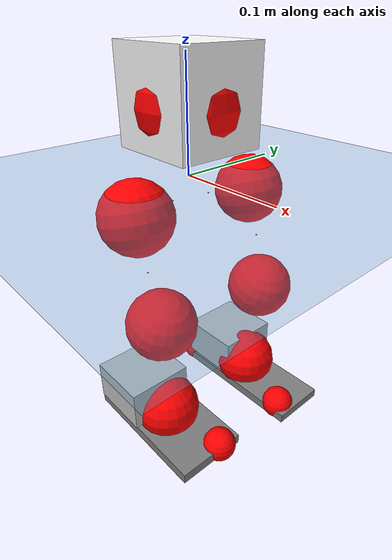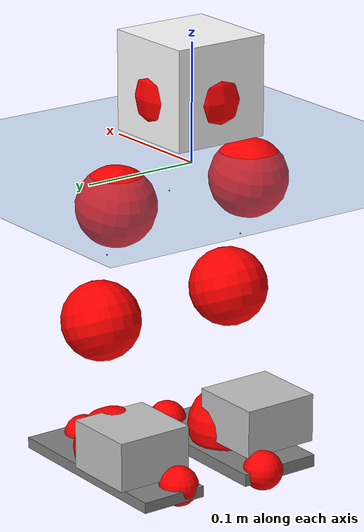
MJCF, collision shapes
<mujoco model="pi_12dof_release_v1">
  <compiler angle="radian" assetdir="assets" balanceinertia="true" inertiafromgeom="false"/>

  <option timestep="0.005" density="1.2" viscosity="2e-05"/>

  <size nkey="1"/>

  <visual>
    <quality shadowsize="8192"/>
    <map shadowclip="0.5"/>
  </visual>

  <default>
    <default class="/">
      <joint armature="0.01" damping="0.01" frictionloss="0.01"/>
      <geom contype="0" conaffinity="0" group="1" solref="-1000 -80"/>
      <site size="0.01 0.005 0.005" group="5"/>
      <general forcelimited="true" biastype="affine" gainprm="20" biasprm="0 -20 -0.5"/>
      <default class="foot">
        <geom size="0.0845 0.036 0.005" type="box" condim="6" group="4" priority="1" friction="0.9 0.2 0.2" solimp="0.015 1 0.005"/>
      </default>
      <default class="reward_collision_sphere">
        <geom group="5" rgba="1 0 0 1"/>
      </default>
    </default>
  </default>

  <asset>
    <texture type="skybox" colorspace="auto" name="//unnamed_texture_0" builtin="gradient" rgb1="0.95 0.95 0.95" rgb2="0.95 0.95 0.95" width="100" height="600"/>
    <texture type="2d" colorspace="auto" name="texplane" builtin="checker" rgb1="0.345 0.575 0.748" rgb2="0.345 0.575 0.748" markrgb="1 1 1" width="512" height="512"/>
    <material name="MatPlane" class="/" texture="texplane" texuniform="true" texrepeat="2 2" specular="0.9"/>
    <mesh name="baselink_1" class="/" file="baselink_1.STL"/>
    <mesh name="r_hip_pitch_link" class="/" file="r_hip_pitch_link.STL"/>
    <mesh name="r_hip_roll_link" class="/" file="r_hip_roll_link.STL"/>
    <mesh name="r_thigh_link" class="/" file="r_thigh_link.STL"/>
    <mesh name="r_calf_link" class="/" file="r_calf_link.STL"/>
    <mesh name="r_ankle_pitch_link" class="/" file="r_ankle_pitch_link.STL"/>
    <mesh name="r_ankle_roll_link" class="/" file="r_ankle_roll_link.STL"/>
    <mesh name="l_hip_pitch_link" class="/" file="l_hip_pitch_link.STL"/>
    <mesh name="l_hip_roll_link" class="/" file="l_hip_roll_link.STL"/>
    <mesh name="l_thigh_link" class="/" file="l_thigh_link.STL"/>
    <mesh name="l_calf_link" class="/" file="l_calf_link.STL"/>
    <mesh name="l_ankle_pitch_link" class="/" file="l_ankle_pitch_link.STL"/>
    <mesh name="l_ankle_roll_link" class="/" file="l_ankle_roll_link.STL"/>
  </asset>

  <worldbody>
    <geom name="floor" class="/" size="100 100 0.125" type="plane" group="0" material="MatPlane"/>
    <light name="toplight_shadow" class="/" pos="0 0 5" dir="0.0990148 0.0990148 -0.990148" type="directional" ambient="0.04 0.04 0.04" diffuse="0.55 0.55 0.55" specular="0.12 0.12 0.12"/>
    <light name="toplight_fill" class="/" pos="0 0 5" dir="0.0990148 0.0990148 -0.990148" type="directional" castshadow="false" ambient="0.04 0.04 0.04" diffuse="0.3 0.3 0.3" specular="0.08 0.08 0.08"/>
    <body name="trunk" pos="0.00226285 -0.000153597 0.00712633" quat="0.999995 -0.00146834 0.000435752 -0.00266591">
      <inertial pos="0.00646614 -0.00483989 0.0314764" quat="0.703613 0.0290088 0.0270941 0.709474" mass="1.14838" diaginertia="0.00815953 0.0019171 0.000842156"/>
      <joint name="//unnamed_joint_0" type="free"/>
      <geom name="//unnamed_geom_1" class="/" type="mesh" density="0" rgba="1 1 1 1" mesh="baselink_1"/>
      <geom name="//unnamed_geom_2" class="/" size="0.0413575 0.0413575 0.0413575" pos="0 0 0.059091" type="box" rgba="1 1 1 1"/>
      <geom name="//unnamed_geom_3" class="reward_collision_sphere" size="0.0454932" pos="0 0 0.0517046"/>
      <site name="imu" class="/" pos="0.010401 -0.0080108 0.0193621" size="0.0082715"/>
      <camera name="track" class="/" pos="0 -1.50563 0" quat="0.707107 0.707107 0 0" mode="trackcom"/>
      <camera name="ego_camera" class="/" pos="0.0742499 0 0.132955" quat="-0.5 -0.5 0.5 0.5"/>
      <body name="r_hip_pitch_link" pos="-0.00554512 -0.0160838 -0.0273886" quat="0.992195 0.000161928 -0.124698 1.24996e-05">
        <inertial pos="0.00660099 -0.0451171 0.00664194" quat="0.0022643 0.724904 -0.0256724 0.688368" mass="0.214853" diaginertia="0.000100761 2.37323e-05 1.854e-05"/>
        <joint name="r_hip_pitch_joint" class="/" pos="0 0 0" axis="0.00159079 -0.999999 -0.000350323" stiffness="0.00580485" range="-1.69783 1.2152" armature="0.00806571" damping="0.0287361" frictionloss="0.00918287"/>
        <geom name="//unnamed_geom_4" class="/" type="mesh" density="0" rgba="0.75294 0.75294 0.75294 1" mesh="r_hip_pitch_link"/>
        <geom name="//unnamed_geom_5" class="/" size="0.000413575 0.000413575 0.000413575" type="box" rgba="0.75294 0.75294 0.75294 1"/>
        <body name="r_hip_roll_link" pos="0.00433278 -0.0423927 -0.00408185" quat="1 0.000551335 -0.000593268 -0.000163535">
          <inertial pos="0.00357303 -0.000731693 -0.0506576" quat="0.704691 -0.0814227 -0.078003 0.700498" mass="0.239183" diaginertia="0.000346503 7.15562e-05 3.16233e-05"/>
          <joint name="r_hip_roll_joint" class="/" pos="0 0 0" axis="-0.999867 -0.013202 -0.00956393" stiffness="0.00358452" range="-0.132896 0.48728" armature="0.0115051" damping="0.00958463" frictionloss="0.00750313"/>
          <geom name="//unnamed_geom_6" class="/" type="mesh" density="0" rgba="0.75294 0.75294 0.75294 1" mesh="r_hip_roll_link"/>
          <geom name="//unnamed_geom_7" class="/" size="0.000413575 0.000413575 0.000413575" type="box" rgba="0.75294 0.75294 0.75294 1"/>
          <geom name="//unnamed_geom_8" class="reward_collision_sphere" size="0.033086"/>
          <body name="r_thigh_link" pos="-0.00511473 0.00233004 -0.0501069" quat="1 -0.000400778 -0.000144002 -0.000260664">
            <inertial pos="0.00855551 0.0074281 -0.0372047" quat="0.732825 0.680397 0.00239201 -0.00465776" mass="0.0627917" diaginertia="0.00012531 2.3094e-05 1.25172e-05"/>
            <joint name="r_thigh_joint" class="/" pos="0 0 0" axis="-0.00163342 -0.00468671 -0.999988" range="-0.287861 0.496905" armature="0.011063" damping="0" frictionloss="0.00736945"/>
            <geom name="//unnamed_geom_9" class="/" type="mesh" density="0" rgba="0.75294 0.75294 0.75294 1" mesh="r_thigh_link"/>
            <geom name="//unnamed_geom_10" class="/" size="0.000413575 0.000413575 0.000413575" type="box" rgba="0.75294 0.75294 0.75294 1"/>
            <body name="r_calf_link" pos="0.00103687 0.00182192 -0.0510232" quat="0.948565 -0.00237528 0.316574 -0.000487449">
              <inertial pos="-0.00101418 -0.000617209 -0.0520902" quat="0.999326 -0.0305835 0.0109886 -0.0170467" mass="0.412199" diaginertia="0.00338878 0.000823867 3.88895e-05"/>
              <joint name="r_calf_joint" class="/" pos="0 0 0" axis="0.00172962 -0.999937 -0.0110952" range="-1.65245 0.627385" armature="0.00833733" damping="0.0122011" frictionloss="0.00915512"/>
              <geom name="//unnamed_geom_11" class="/" type="mesh" density="0" rgba="0.75294 0.75294 0.75294 1" mesh="r_calf_link"/>
              <geom name="//unnamed_geom_12" class="/" size="0.000413575 0.000413575 0.000413575" type="box" rgba="0.75294 0.75294 0.75294 1"/>
              <geom name="//unnamed_geom_13" class="reward_collision_sphere" size="0.033086"/>
              <body name="r_ankle_pitch_link" pos="-0.00107327 0.0024032 -0.108871" quat="0.980067 -2.11827e-06 -0.198669 9.48986e-07">
                <inertial pos="0.00496402 0.00234255 -0.00125683" quat="0.000578057 0.708423 0.00438649 0.705775" mass="0.0957416" diaginertia="0.000300555 5.6953e-05 2.65266e-05"/>
                <joint name="r_ankle_pitch_joint" class="/" pos="0 0 0" axis="0.00976595 -0.999939 -0.00510246" stiffness="0.00551408" range="-1.27459 0.500863" armature="0.00806106" damping="0" frictionloss="0.0091879"/>
                <geom name="//unnamed_geom_14" class="/" type="mesh" density="0" rgba="0.75294 0.75294 0.75294 1" mesh="r_ankle_pitch_link"/>
                <geom name="//unnamed_geom_15" class="/" size="0.0322588 0.033086 0.0206787" type="box" rgba="0.75294 0.75294 0.75294 1"/>
                <body name="r_ankle_roll_link" pos="0.0812026 0.00720125 -0.00155461" quat="0.999999 -0.000336839 -0.000732403 -0.000607923">
                  <inertial pos="-0.0260432 0.00601009 -0.0150164" quat="0.555656 0.398836 0.443369 0.57931" mass="0.306603" diaginertia="0.00112866 0.000250414 6.86991e-05"/>
                  <joint name="r_ankle_roll_joint" class="/" pos="0 0 0" axis="-0.999933 0.0100461 0.00572774" range="0.00930209 0.119734" armature="0.0104026" damping="0" frictionloss="0.0108634"/>
                  <geom name="//unnamed_geom_16" class="/" type="mesh" density="0" rgba="0.75294 0.75294 0.75294 1" mesh="r_ankle_roll_link"/>
                  <geom name="//unnamed_geom_17" class="/" type="mesh" rgba="0.75294 0.75294 0.75294 1" mesh="r_ankle_roll_link"/>
                  <geom name="right_foot" class="foot" size="0.0719942 0.0356126 0.00518403" pos="-0.05049 0 -0.0325"/>
                  <geom name="//unnamed_geom_19" class="reward_collision_sphere" size="0.033086" pos="-0.0495 0 -0.0147727"/>
                  <geom name="//unnamed_geom_20" class="reward_collision_sphere" size="0.016543" pos="0.01485 0.0150563 -0.0295455"/>
                  <geom name="//unnamed_geom_21" class="reward_collision_sphere" size="0.016543" pos="-0.1188 0.0150563 -0.0295455"/>
                  <site name="right_foot" class="foot" pos="-0.05049 0 -0.0325" size="0.0082715"/>
                </body>
              </body>
            </body>
          </body>
        </body>
      </body>
      <body name="l_hip_pitch_link" pos="0.000998575 0.0203205 -0.0271989" quat="0.992223 -0.000355692 -0.124475 -0.00019715">
        <inertial pos="-0.000415861 0.0465504 0.00697776" quat="-0.0381289 0.706516 0.0306534 0.706004" mass="0.218502" diaginertia="0.000125309 2.5994e-05 2.36284e-05"/>
        <joint name="l_hip_pitch_joint" class="/" pos="0 0 0" axis="-0.0242757 0.999691 -0.00532403" stiffness="0.0131132" range="-1.10767 1.77216" armature="0.00837634" damping="0.0210331" frictionloss="0.00784522"/>
        <geom name="//unnamed_geom_22" class="/" type="mesh" density="0" rgba="0.75294 0.75294 0.75294 1" mesh="l_hip_pitch_link"/>
        <geom name="//unnamed_geom_23" class="/" size="0.000413575 0.000413575 0.000413575" type="box" rgba="0.75294 0.75294 0.75294 1"/>
        <body name="l_hip_roll_link" pos="0.00436598 0.0475538 -0.00658713" quat="0.999998 -0.000871059 -0.00149727 1.27661e-05">
          <inertial pos="-0.0095907 0.00340722 -0.0373643" quat="0.69906 -0.0751582 -0.0778283 0.70683" mass="0.192777" diaginertia="0.000261945 6.18221e-05 2.44401e-05"/>
          <joint name="l_hip_roll_joint" class="/" pos="0 0 0" axis="-0.999942 -0.00878918 0.00621144" range="-0.4991 0.145587" armature="0.00942836" damping="0" frictionloss="0.00831062"/>
          <geom name="//unnamed_geom_24" class="/" type="mesh" density="0" rgba="0.75294 0.75294 0.75294 1" mesh="l_hip_roll_link"/>
          <geom name="//unnamed_geom_25" class="/" size="0.000413575 0.000413575 0.000413575" type="box" rgba="0.75294 0.75294 0.75294 1"/>
          <geom name="//unnamed_geom_26" class="reward_collision_sphere" size="0.033086"/>
          <body name="l_thigh_link" pos="0.00287569 -0.000582376 -0.0470672" quat="0.999998 0.00142398 0.000493257 -0.00127464">
            <inertial pos="0.00696383 -0.00373769 -0.0279347" quat="0.669873 0.74196 0.00541139 -0.0271339" mass="0.0676377" diaginertia="0.00012223 2.40188e-05 1.32174e-05"/>
            <joint name="l_thigh_joint" class="/" pos="0 0 0" axis="0.00432485 0.00535703 -0.999976" range="-0.635939 0.239284" armature="0.00781072" damping="0" frictionloss="0.00516349"/>
            <geom name="//unnamed_geom_27" class="/" type="mesh" density="0" rgba="0.75294 0.75294 0.75294 1" mesh="l_thigh_link"/>
            <geom name="//unnamed_geom_28" class="/" size="0.000413575 0.000413575 0.000413575" type="box" rgba="0.75294 0.75294 0.75294 1"/>
            <body name="l_calf_link" pos="-0.00824265 0.00212341 -0.0571559" quat="0.947615 -0.000339361 0.319414 0.000225834">
              <inertial pos="0.00447386 0.00439319 -0.0552318" quat="0.999674 -0.0187456 0.0159927 -0.00674896" mass="0.46306" diaginertia="0.0028045 0.000780397 3.44908e-05"/>
              <joint name="l_calf_joint" class="/" pos="0 0 0" axis="-0.00400409 0.999991 0.00131797" stiffness="0.0203307" range="-0.547614 1.53197" armature="0.00888194" damping="0.0152116" frictionloss="0.00732662"/>
              <geom name="//unnamed_geom_29" class="/" type="mesh" density="0" rgba="0.75294 0.75294 0.75294 1" mesh="l_calf_link"/>
              <geom name="//unnamed_geom_30" class="/" size="0.000413575 0.000413575 0.000413575" type="box" rgba="0.75294 0.75294 0.75294 1"/>
              <geom name="//unnamed_geom_31" class="reward_collision_sphere" size="0.033086"/>
              <body name="l_ankle_pitch_link" pos="-0.00392853 0.00151405 -0.104633" quat="0.980173 -0.000248321 -0.19814 0.00128786">
                <inertial pos="0.00486416 0.00030716 0.00538388" quat="-0.00539789 0.699779 0.00814029 0.714293" mass="0.107562" diaginertia="0.000270477 5.26306e-05 2.65449e-05"/>
                <joint name="l_ankle_pitch_joint" class="/" pos="0 0 0" axis="-0.00117802 0.999999 -0.000868592" range="-0.459667 1.35308" armature="0.00833822" damping="0.0446689" frictionloss="0.00992391"/>
                <geom name="//unnamed_geom_32" class="/" type="mesh" density="0" rgba="0.75294 0.75294 0.75294 1" mesh="l_ankle_pitch_link"/>
                <geom name="//unnamed_geom_33" class="/" size="0.0322588 0.033086 0.0206787" type="box" rgba="0.75294 0.75294 0.75294 1"/>
                <body name="l_ankle_roll_link" pos="0.0806222 -0.00361862 0.00442952" quat="0.999991 0.000542547 -0.00399076 0.00107515">
                  <inertial pos="-0.0242942 -0.000129039 -0.0125432" quat="0.575162 0.428503 0.409608 0.563734" mass="0.279374" diaginertia="0.0010224 0.000240491 6.55646e-05"/>
                  <joint name="l_ankle_roll_joint" class="/" pos="0 0 0" axis="-1 -0.000555138 -0.000582776" range="-0.118703 0.314809" armature="0.00855261" damping="0.0192118" frictionloss="0.00853837"/>
                  <geom name="//unnamed_geom_34" class="/" type="mesh" density="0" rgba="0.75294 0.75294 0.75294 1" mesh="l_ankle_roll_link"/>
                  <geom name="//unnamed_geom_35" class="/" type="mesh" rgba="0.75294 0.75294 0.75294 1" mesh="l_ankle_roll_link"/>
                  <geom name="left_foot" class="foot" size="0.083392 0.0287734 0.00458598" pos="-0.05049 0 -0.0325"/>
                  <geom name="//unnamed_geom_37" class="reward_collision_sphere" size="0.033086" pos="-0.0495 0 -0.0147727"/>
                  <geom name="//unnamed_geom_38" class="reward_collision_sphere" size="0.016543" pos="0.01485 -0.0150563 -0.0295455"/>
                  <geom name="//unnamed_geom_39" class="reward_collision_sphere" size="0.016543" pos="-0.1188 -0.0150563 -0.0295455"/>
                  <site name="left_foot" class="foot" pos="-0.05049 0 -0.0325" size="0.0082715"/>
                </body>
              </body>
            </body>
          </body>
        </body>
      </body>
    </body>
  </worldbody>

  <contact>
    <pair class="/" geom1="floor" geom2="right_foot" name="//unnamed_contact_1"/>
    <pair class="/" geom1="floor" geom2="left_foot" name="//unnamed_contact_0"/>
  </contact>

  <actuator>
    <general name="r_hip_pitch_joint" class="/" joint="r_hip_pitch_joint" forcerange="-14.1036 14.1036" gainprm="19.9227" biasprm="0 -19.9227 -0.475432"/>
    <general name="r_hip_roll_joint" class="/" joint="r_hip_roll_joint" forcerange="-22.414 22.414" gainprm="19.9227" biasprm="0 -19.9227 -0.475432"/>
    <general name="r_thigh_joint" class="/" joint="r_thigh_joint" forcerange="-17.5604 17.5604" gainprm="19.9227" biasprm="0 -19.9227 -0.475432"/>
    <general name="r_calf_joint" class="/" joint="r_calf_joint" forcerange="-12.0321 12.0321" gainprm="19.9227" biasprm="0 -19.9227 -0.475432"/>
    <general name="r_ankle_pitch_joint" class="/" joint="r_ankle_pitch_joint" forcerange="-17.4119 17.4119" gainprm="19.9227" biasprm="0 -19.9227 -0.475432"/>
    <general name="r_ankle_roll_joint" class="/" joint="r_ankle_roll_joint" forcerange="-22.3083 22.3083" gainprm="19.9227" biasprm="0 -19.9227 -0.475432"/>
    <general name="l_hip_pitch_joint" class="/" joint="l_hip_pitch_joint" forcerange="-17.3502 17.3502" gainprm="19.9227" biasprm="0 -19.9227 -0.475432"/>
    <general name="l_hip_roll_joint" class="/" joint="l_hip_roll_joint" forcerange="-18.7593 18.7593" gainprm="19.9227" biasprm="0 -19.9227 -0.475432"/>
    <general name="l_thigh_joint" class="/" joint="l_thigh_joint" forcerange="-16.4306 16.4306" gainprm="19.9227" biasprm="0 -19.9227 -0.475432"/>
    <general name="l_calf_joint" class="/" joint="l_calf_joint" forcerange="-15.9634 15.9634" gainprm="19.9227" biasprm="0 -19.9227 -0.475432"/>
    <general name="l_ankle_pitch_joint" class="/" joint="l_ankle_pitch_joint" forcerange="-16.5825 16.5825" gainprm="19.9227" biasprm="0 -19.9227 -0.475432"/>
    <general name="l_ankle_roll_joint" class="/" joint="l_ankle_roll_joint" forcerange="-17.0551 17.0551" gainprm="19.9227" biasprm="0 -19.9227 -0.475432"/>
  </actuator>

  <sensor>
    <gyro site="imu" name="imu_angular_velocity"/>
    <velocimeter site="imu" name="imu_linear_velocity"/>
    <framelinvel objtype="site" objname="left_foot" name="left_foot_global_linear_velocity"/>
    <framelinvel objtype="site" objname="right_foot" name="right_foot_global_linear_velocity"/>
  </sensor>

  <keyframe>
    <key name="home" qpos="0 0 0.291 1 0 0 0 0.4 0 0 -0.8 0.4 0 -0.4 0 0 0.8 -0.4 0"/>
  </keyframe>
</mujoco>
